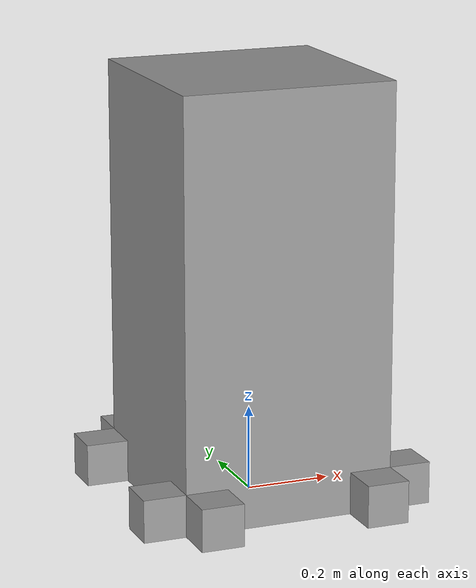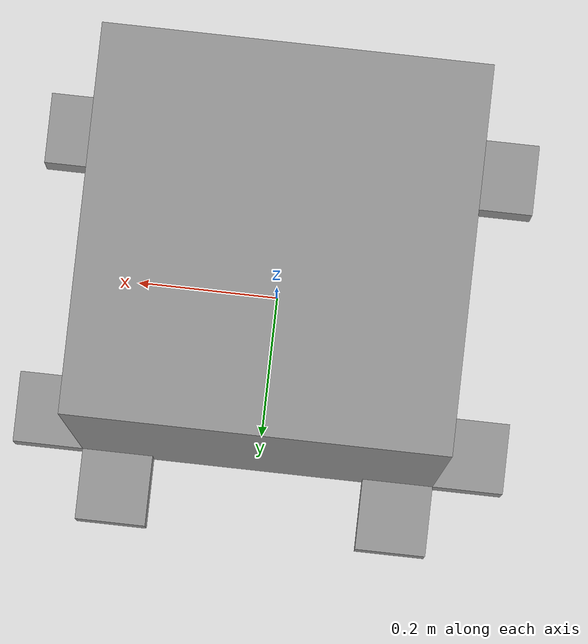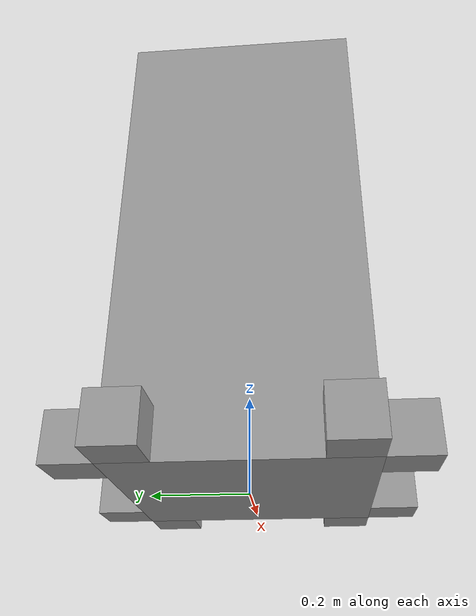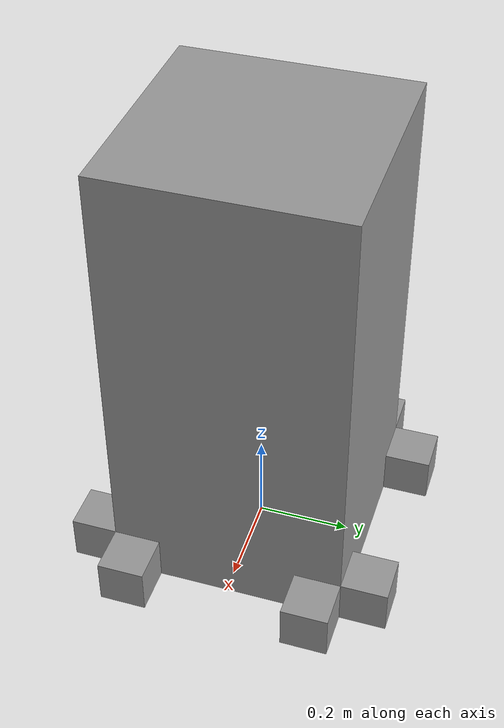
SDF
<?xml version='1.0'?>
<sdf version='1.6'>
  <model name='RSS_NO_BEARINGS'>
    <link name='link_0'>
      <inertial>
        <mass>1</mass>
        <inertia>
          <ixx>0.166667</ixx>
          <ixy>0</ixy>
          <ixz>0</ixz>
          <iyy>0.166667</iyy>
          <iyz>0</iyz>
          <izz>0.166667</izz>
        </inertia>
        <pose frame=''>0 0 0 0 -0 0</pose>
      </inertial>
      <pose frame=''>1e-06 -0 0.4 -0 -0 -0</pose>
      <gravity>1</gravity>
      <self_collide>1</self_collide>
      <kinematic>0</kinematic>
      <enable_wind>0</enable_wind>
      <visual name='visual'>
        <pose frame=''>0 0 0.1 0 -0 0</pose>
        <geometry>
          <box>
            <size>0.5 0.5 1</size>
          </box>
        </geometry>
        <material>
          <lighting>1</lighting>
          <script>
            <uri>file://media/materials/scripts/gazebo.material</uri>
            <name>Gazebo/Grey</name>
          </script>
          <shader type='pixel'>
            <normal_map>__default__</normal_map>
          </shader>
          <ambient>0.3 0.3 0.3 1</ambient>
          <diffuse>0.7 0.7 0.7 1</diffuse>
          <specular>0.01 0.01 0.01 1</specular>
          <emissive>0 0 0 1</emissive>
        </material>
        <transparency>0</transparency>
        <cast_shadows>1</cast_shadows>
      </visual>
      <collision name='collision'>
        <laser_retro>0</laser_retro>
        <max_contacts>10</max_contacts>
        <pose frame=''>0 0 0.1 0 -0 0</pose>
        <geometry>
          <box>
            <size>0.5 0.5 1</size>
          </box>
        </geometry>
        <surface>
          <friction>
            <ode>
              <mu>0</mu>
              <mu2>0</mu2>
              <fdir1>0 0 0</fdir1>
              <slip1>0</slip1>
              <slip2>0</slip2>
            </ode>
            <torsional>
              <coefficient>1</coefficient>
              <patch_radius>0</patch_radius>
              <surface_radius>0</surface_radius>
              <use_patch_radius>1</use_patch_radius>
              <ode>
                <slip>0</slip>
              </ode>
            </torsional>
          </friction>
          <bounce>
            <restitution_coefficient>0</restitution_coefficient>
            <threshold>1e+06</threshold>
          </bounce>
          <contact>
            <collide_without_contact>0</collide_without_contact>
            <collide_without_contact_bitmask>1</collide_without_contact_bitmask>
            <collide_bitmask>1</collide_bitmask>
            <ode>
              <soft_cfm>0</soft_cfm>
              <soft_erp>0.2</soft_erp>
              <kp>1e+13</kp>
              <kd>1</kd>
              <max_vel>0.01</max_vel>
              <min_depth>0</min_depth>
            </ode>
            <bullet>
              <split_impulse>1</split_impulse>
              <split_impulse_penetration_threshold>-0.01</split_impulse_penetration_threshold>
              <soft_cfm>0</soft_cfm>
              <soft_erp>0.2</soft_erp>
              <kp>1e+13</kp>
              <kd>1</kd>
            </bullet>
          </contact>
        </surface>
      </collision>
    </link>
    <link name='link_1'>
      <inertial>
        <mass>1</mass>
        <inertia>
          <ixx>0.166667</ixx>
          <ixy>0</ixy>
          <ixz>0</ixz>
          <iyy>0.166667</iyy>
          <iyz>0</iyz>
          <izz>0.166667</izz>
        </inertia>
        <pose frame=''>0 0 0 0 -0 0</pose>
      </inertial>
      <pose frame=''>-0.199999 0.299999 -0.05 -0 -0 -0</pose>
      <gravity>1</gravity>
      <self_collide>1</self_collide>
      <kinematic>0</kinematic>
      <enable_wind>0</enable_wind>
      <visual name='visual'>
        <pose frame=''>0 0 0.1 0 -0 0</pose>
        <geometry>
          <box>
            <size>0.1 0.1 0.1</size>
          </box>
        </geometry>
        <material>
          <lighting>1</lighting>
          <script>
            <uri>file://media/materials/scripts/gazebo.material</uri>
            <name>Gazebo/Grey</name>
          </script>
          <shader type='pixel'>
            <normal_map>__default__</normal_map>
          </shader>
          <ambient>0.3 0.3 0.3 1</ambient>
          <diffuse>0.7 0.7 0.7 1</diffuse>
          <specular>0.01 0.01 0.01 1</specular>
          <emissive>0 0 0 1</emissive>
        </material>
        <transparency>0</transparency>
        <cast_shadows>1</cast_shadows>
      </visual>
      <collision name='collision'>
        <laser_retro>0</laser_retro>
        <max_contacts>10</max_contacts>
        <pose frame=''>0 0 0.1 0 -0 0</pose>
        <geometry>
          <box>
            <size>0.1 0.1 0.1</size>
          </box>
        </geometry>
        <surface>
          <friction>
            <ode>
              <mu>0</mu>
              <mu2>1</mu2>
              <fdir1>0 0 0</fdir1>
              <slip1>0</slip1>
              <slip2>0</slip2>
            </ode>
            <torsional>
              <coefficient>1</coefficient>
              <patch_radius>0</patch_radius>
              <surface_radius>0</surface_radius>
              <use_patch_radius>1</use_patch_radius>
              <ode>
                <slip>0</slip>
              </ode>
            </torsional>
          </friction>
          <bounce>
            <restitution_coefficient>0</restitution_coefficient>
            <threshold>1e+06</threshold>
          </bounce>
          <contact>
            <collide_without_contact>0</collide_without_contact>
            <collide_without_contact_bitmask>1</collide_without_contact_bitmask>
            <collide_bitmask>1</collide_bitmask>
            <ode>
              <soft_cfm>0</soft_cfm>
              <soft_erp>0.2</soft_erp>
              <kp>1e+13</kp>
              <kd>1</kd>
              <max_vel>0.01</max_vel>
              <min_depth>0</min_depth>
            </ode>
            <bullet>
              <split_impulse>1</split_impulse>
              <split_impulse_penetration_threshold>-0.01</split_impulse_penetration_threshold>
              <soft_cfm>0</soft_cfm>
              <soft_erp>0.2</soft_erp>
              <kp>1e+13</kp>
              <kd>1</kd>
            </bullet>
          </contact>
        </surface>
      </collision>
    </link>
    <link name='link_1_clone'>
      <inertial>
        <mass>1</mass>
        <inertia>
          <ixx>0.166667</ixx>
          <ixy>0</ixy>
          <ixz>0</ixz>
          <iyy>0.166667</iyy>
          <iyz>0</iyz>
          <izz>0.166667</izz>
        </inertia>
        <pose frame=''>0 0 0 0 -0 0</pose>
      </inertial>
      <pose frame=''>0.199999 0.3 -0.05 -0 -0 -0</pose>
      <gravity>1</gravity>
      <self_collide>1</self_collide>
      <kinematic>0</kinematic>
      <enable_wind>0</enable_wind>
      <visual name='visual'>
        <pose frame=''>0 0 0.1 0 -0 0</pose>
        <geometry>
          <box>
            <size>0.1 0.1 0.1</size>
          </box>
        </geometry>
        <material>
          <lighting>1</lighting>
          <script>
            <uri>file://media/materials/scripts/gazebo.material</uri>
            <name>Gazebo/Grey</name>
          </script>
          <shader type='pixel'>
            <normal_map>__default__</normal_map>
          </shader>
          <ambient>0.3 0.3 0.3 1</ambient>
          <diffuse>0.7 0.7 0.7 1</diffuse>
          <specular>0.01 0.01 0.01 1</specular>
          <emissive>0 0 0 1</emissive>
        </material>
        <transparency>0</transparency>
        <cast_shadows>1</cast_shadows>
      </visual>
      <collision name='collision'>
        <laser_retro>0</laser_retro>
        <max_contacts>10</max_contacts>
        <pose frame=''>0 0 0.1 0 -0 0</pose>
        <geometry>
          <box>
            <size>0.1 0.1 0.1</size>
          </box>
        </geometry>
        <surface>
          <friction>
            <ode>
              <mu>0</mu>
              <mu2>0</mu2>
              <fdir1>0 0 0</fdir1>
              <slip1>0</slip1>
              <slip2>0</slip2>
            </ode>
            <torsional>
              <coefficient>1</coefficient>
              <patch_radius>0</patch_radius>
              <surface_radius>0</surface_radius>
              <use_patch_radius>1</use_patch_radius>
              <ode>
                <slip>0</slip>
              </ode>
            </torsional>
          </friction>
          <bounce>
            <restitution_coefficient>0</restitution_coefficient>
            <threshold>1e+06</threshold>
          </bounce>
          <contact>
            <collide_without_contact>0</collide_without_contact>
            <collide_without_contact_bitmask>1</collide_without_contact_bitmask>
            <collide_bitmask>1</collide_bitmask>
            <ode>
              <soft_cfm>0</soft_cfm>
              <soft_erp>0.2</soft_erp>
              <kp>1e+13</kp>
              <kd>1</kd>
              <max_vel>0.01</max_vel>
              <min_depth>0</min_depth>
            </ode>
            <bullet>
              <split_impulse>1</split_impulse>
              <split_impulse_penetration_threshold>-0.01</split_impulse_penetration_threshold>
              <soft_cfm>0</soft_cfm>
              <soft_erp>0.2</soft_erp>
              <kp>1e+13</kp>
              <kd>1</kd>
            </bullet>
          </contact>
        </surface>
      </collision>
    </link>
    <link name='link_1_clone_0'>
      <inertial>
        <mass>1</mass>
        <inertia>
          <ixx>0.166667</ixx>
          <ixy>0</ixy>
          <ixz>0</ixz>
          <iyy>0.166667</iyy>
          <iyz>0</iyz>
          <izz>0.166667</izz>
        </inertia>
        <pose frame=''>0 0 0 0 -0 0</pose>
      </inertial>
      <pose frame=''>-0.299999 0.2 -0.05 -0 -0 -0</pose>
      <gravity>1</gravity>
      <self_collide>1</self_collide>
      <kinematic>0</kinematic>
      <enable_wind>0</enable_wind>
      <visual name='visual'>
        <pose frame=''>0 0 0.1 0 -0 0</pose>
        <geometry>
          <box>
            <size>0.1 0.1 0.1</size>
          </box>
        </geometry>
        <material>
          <lighting>1</lighting>
          <script>
            <uri>file://media/materials/scripts/gazebo.material</uri>
            <name>Gazebo/Grey</name>
          </script>
          <shader type='pixel'>
            <normal_map>__default__</normal_map>
          </shader>
          <ambient>0.3 0.3 0.3 1</ambient>
          <diffuse>0.7 0.7 0.7 1</diffuse>
          <specular>0.01 0.01 0.01 1</specular>
          <emissive>0 0 0 1</emissive>
        </material>
        <transparency>0</transparency>
        <cast_shadows>1</cast_shadows>
      </visual>
      <collision name='collision'>
        <laser_retro>0</laser_retro>
        <max_contacts>10</max_contacts>
        <pose frame=''>0 0 0.1 0 -0 0</pose>
        <geometry>
          <box>
            <size>0.1 0.1 0.1</size>
          </box>
        </geometry>
        <surface>
          <friction>
            <ode>
              <mu>0</mu>
              <mu2>0</mu2>
              <fdir1>0 0 0</fdir1>
              <slip1>0</slip1>
              <slip2>0</slip2>
            </ode>
            <torsional>
              <coefficient>1</coefficient>
              <patch_radius>0</patch_radius>
              <surface_radius>0</surface_radius>
              <use_patch_radius>1</use_patch_radius>
              <ode>
                <slip>0</slip>
              </ode>
            </torsional>
          </friction>
          <bounce>
            <restitution_coefficient>0</restitution_coefficient>
            <threshold>1e+06</threshold>
          </bounce>
          <contact>
            <collide_without_contact>0</collide_without_contact>
            <collide_without_contact_bitmask>1</collide_without_contact_bitmask>
            <collide_bitmask>1</collide_bitmask>
            <ode>
              <soft_cfm>0</soft_cfm>
              <soft_erp>0.2</soft_erp>
              <kp>1e+13</kp>
              <kd>1</kd>
              <max_vel>0.01</max_vel>
              <min_depth>0</min_depth>
            </ode>
            <bullet>
              <split_impulse>1</split_impulse>
              <split_impulse_penetration_threshold>-0.01</split_impulse_penetration_threshold>
              <soft_cfm>0</soft_cfm>
              <soft_erp>0.2</soft_erp>
              <kp>1e+13</kp>
              <kd>1</kd>
            </bullet>
          </contact>
        </surface>
      </collision>
    </link>
    <link name='link_1_clone_1'>
      <inertial>
        <mass>1</mass>
        <inertia>
          <ixx>0.166667</ixx>
          <ixy>0</ixy>
          <ixz>0</ixz>
          <iyy>0.166667</iyy>
          <iyz>0</iyz>
          <izz>0.166667</izz>
        </inertia>
        <pose frame=''>0 0 0 0 -0 0</pose>
      </inertial>
      <pose frame=''>-0.299999 -0.2 -0.05 -0 -0 -0</pose>
      <gravity>1</gravity>
      <self_collide>1</self_collide>
      <kinematic>0</kinematic>
      <enable_wind>0</enable_wind>
      <visual name='visual'>
        <pose frame=''>0 0 0.1 0 -0 0</pose>
        <geometry>
          <box>
            <size>0.1 0.1 0.1</size>
          </box>
        </geometry>
        <material>
          <lighting>1</lighting>
          <script>
            <uri>file://media/materials/scripts/gazebo.material</uri>
            <name>Gazebo/Grey</name>
          </script>
          <shader type='pixel'>
            <normal_map>__default__</normal_map>
          </shader>
          <ambient>0.3 0.3 0.3 1</ambient>
          <diffuse>0.7 0.7 0.7 1</diffuse>
          <specular>0.01 0.01 0.01 1</specular>
          <emissive>0 0 0 1</emissive>
        </material>
        <transparency>0</transparency>
        <cast_shadows>1</cast_shadows>
      </visual>
      <collision name='collision'>
        <laser_retro>0</laser_retro>
        <max_contacts>10</max_contacts>
        <pose frame=''>0 0 0.1 0 -0 0</pose>
        <geometry>
          <box>
            <size>0.1 0.1 0.1</size>
          </box>
        </geometry>
        <surface>
          <friction>
            <ode>
              <mu>0</mu>
              <mu2>0</mu2>
              <fdir1>0 0 0</fdir1>
              <slip1>0</slip1>
              <slip2>0</slip2>
            </ode>
            <torsional>
              <coefficient>1</coefficient>
              <patch_radius>0</patch_radius>
              <surface_radius>0</surface_radius>
              <use_patch_radius>1</use_patch_radius>
              <ode>
                <slip>0</slip>
              </ode>
            </torsional>
          </friction>
          <bounce>
            <restitution_coefficient>0</restitution_coefficient>
            <threshold>1e+06</threshold>
          </bounce>
          <contact>
            <collide_without_contact>0</collide_without_contact>
            <collide_without_contact_bitmask>1</collide_without_contact_bitmask>
            <collide_bitmask>1</collide_bitmask>
            <ode>
              <soft_cfm>0</soft_cfm>
              <soft_erp>0.2</soft_erp>
              <kp>1e+13</kp>
              <kd>1</kd>
              <max_vel>0.01</max_vel>
              <min_depth>0</min_depth>
            </ode>
            <bullet>
              <split_impulse>1</split_impulse>
              <split_impulse_penetration_threshold>-0.01</split_impulse_penetration_threshold>
              <soft_cfm>0</soft_cfm>
              <soft_erp>0.2</soft_erp>
              <kp>1e+13</kp>
              <kd>1</kd>
            </bullet>
          </contact>
        </surface>
      </collision>
    </link>
    <link name='link_1_clone_2'>
      <inertial>
        <mass>1</mass>
        <inertia>
          <ixx>0.166667</ixx>
          <ixy>0</ixy>
          <ixz>0</ixz>
          <iyy>0.166667</iyy>
          <iyz>0</iyz>
          <izz>0.166667</izz>
        </inertia>
        <pose frame=''>0 0 0 0 -0 0</pose>
      </inertial>
      <pose frame=''>0.2 -0.3 -0.05 -0 -0 -0</pose>
      <gravity>1</gravity>
      <self_collide>1</self_collide>
      <kinematic>0</kinematic>
      <enable_wind>0</enable_wind>
      <visual name='visual'>
        <pose frame=''>0 0 0.1 0 -0 0</pose>
        <geometry>
          <box>
            <size>0.1 0.1 0.1</size>
          </box>
        </geometry>
        <material>
          <lighting>1</lighting>
          <script>
            <uri>file://media/materials/scripts/gazebo.material</uri>
            <name>Gazebo/Grey</name>
          </script>
          <shader type='pixel'>
            <normal_map>__default__</normal_map>
          </shader>
          <ambient>0.3 0.3 0.3 1</ambient>
          <diffuse>0.7 0.7 0.7 1</diffuse>
          <specular>0.01 0.01 0.01 1</specular>
          <emissive>0 0 0 1</emissive>
        </material>
        <transparency>0</transparency>
        <cast_shadows>1</cast_shadows>
      </visual>
      <collision name='collision'>
        <laser_retro>0</laser_retro>
        <max_contacts>10</max_contacts>
        <pose frame=''>0 0 0.1 0 -0 0</pose>
        <geometry>
          <box>
            <size>0.1 0.1 0.1</size>
          </box>
        </geometry>
        <surface>
          <friction>
            <ode>
              <mu>0</mu>
              <mu2>0</mu2>
              <fdir1>0 0 0</fdir1>
              <slip1>0</slip1>
              <slip2>0</slip2>
            </ode>
            <torsional>
              <coefficient>1</coefficient>
              <patch_radius>0</patch_radius>
              <surface_radius>0</surface_radius>
              <use_patch_radius>1</use_patch_radius>
              <ode>
                <slip>0</slip>
              </ode>
            </torsional>
          </friction>
          <bounce>
            <restitution_coefficient>0</restitution_coefficient>
            <threshold>1e+06</threshold>
          </bounce>
          <contact>
            <collide_without_contact>0</collide_without_contact>
            <collide_without_contact_bitmask>1</collide_without_contact_bitmask>
            <collide_bitmask>1</collide_bitmask>
            <ode>
              <soft_cfm>0</soft_cfm>
              <soft_erp>0.2</soft_erp>
              <kp>1e+13</kp>
              <kd>1</kd>
              <max_vel>0.01</max_vel>
              <min_depth>0</min_depth>
            </ode>
            <bullet>
              <split_impulse>1</split_impulse>
              <split_impulse_penetration_threshold>-0.01</split_impulse_penetration_threshold>
              <soft_cfm>0</soft_cfm>
              <soft_erp>0.2</soft_erp>
              <kp>1e+13</kp>
              <kd>1</kd>
            </bullet>
          </contact>
        </surface>
      </collision>
    </link>
    <link name='link_1_clone_3'>
      <inertial>
        <mass>1</mass>
        <inertia>
          <ixx>0.166667</ixx>
          <ixy>0</ixy>
          <ixz>0</ixz>
          <iyy>0.166667</iyy>
          <iyz>0</iyz>
          <izz>0.166667</izz>
        </inertia>
        <pose frame=''>0 0 0 0 -0 0</pose>
      </inertial>
      <pose frame=''>-0.2 -0.3 -0.05 -0 -0 -0</pose>
      <gravity>1</gravity>
      <self_collide>1</self_collide>
      <kinematic>0</kinematic>
      <enable_wind>0</enable_wind>
      <visual name='visual'>
        <pose frame=''>0 0 0.1 0 -0 0</pose>
        <geometry>
          <box>
            <size>0.1 0.1 0.1</size>
          </box>
        </geometry>
        <material>
          <lighting>1</lighting>
          <script>
            <uri>file://media/materials/scripts/gazebo.material</uri>
            <name>Gazebo/Grey</name>
          </script>
          <shader type='pixel'>
            <normal_map>__default__</normal_map>
          </shader>
          <ambient>0.3 0.3 0.3 1</ambient>
          <diffuse>0.7 0.7 0.7 1</diffuse>
          <specular>0.01 0.01 0.01 1</specular>
          <emissive>0 0 0 1</emissive>
        </material>
        <transparency>0</transparency>
        <cast_shadows>1</cast_shadows>
      </visual>
      <collision name='collision'>
        <laser_retro>0</laser_retro>
        <max_contacts>10</max_contacts>
        <pose frame=''>0 0 0.1 0 -0 0</pose>
        <geometry>
          <box>
            <size>0.1 0.1 0.1</size>
          </box>
        </geometry>
        <surface>
          <friction>
            <ode>
              <mu>0</mu>
              <mu2>0</mu2>
              <fdir1>0 0 0</fdir1>
              <slip1>0</slip1>
              <slip2>0</slip2>
            </ode>
            <torsional>
              <coefficient>1</coefficient>
              <patch_radius>0</patch_radius>
              <surface_radius>0</surface_radius>
              <use_patch_radius>1</use_patch_radius>
              <ode>
                <slip>0</slip>
              </ode>
            </torsional>
          </friction>
          <bounce>
            <restitution_coefficient>0</restitution_coefficient>
            <threshold>1e+06</threshold>
          </bounce>
          <contact>
            <collide_without_contact>0</collide_without_contact>
            <collide_without_contact_bitmask>1</collide_without_contact_bitmask>
            <collide_bitmask>1</collide_bitmask>
            <ode>
              <soft_cfm>0</soft_cfm>
              <soft_erp>0.2</soft_erp>
              <kp>1e+13</kp>
              <kd>1</kd>
              <max_vel>0.01</max_vel>
              <min_depth>0</min_depth>
            </ode>
            <bullet>
              <split_impulse>1</split_impulse>
              <split_impulse_penetration_threshold>-0.01</split_impulse_penetration_threshold>
              <soft_cfm>0</soft_cfm>
              <soft_erp>0.2</soft_erp>
              <kp>1e+13</kp>
              <kd>1</kd>
            </bullet>
          </contact>
        </surface>
      </collision>
    </link>
    <link name='link_1_clone_4'>
      <inertial>
        <mass>1</mass>
        <inertia>
          <ixx>0.166667</ixx>
          <ixy>0</ixy>
          <ixz>0</ixz>
          <iyy>0.166667</iyy>
          <iyz>0</iyz>
          <izz>0.166667</izz>
        </inertia>
        <pose frame=''>0 0 0 0 -0 0</pose>
      </inertial>
      <pose frame=''>0.3 -0.200001 -0.05 -0 -0 -0</pose>
      <gravity>1</gravity>
      <self_collide>1</self_collide>
      <kinematic>0</kinematic>
      <enable_wind>0</enable_wind>
      <visual name='visual'>
        <pose frame=''>0 0 0.1 0 -0 0</pose>
        <geometry>
          <box>
            <size>0.1 0.1 0.1</size>
          </box>
        </geometry>
        <material>
          <lighting>1</lighting>
          <script>
            <uri>file://media/materials/scripts/gazebo.material</uri>
            <name>Gazebo/Grey</name>
          </script>
          <shader type='pixel'>
            <normal_map>__default__</normal_map>
          </shader>
          <ambient>0.3 0.3 0.3 1</ambient>
          <diffuse>0.7 0.7 0.7 1</diffuse>
          <specular>0.01 0.01 0.01 1</specular>
          <emissive>0 0 0 1</emissive>
        </material>
        <transparency>0</transparency>
        <cast_shadows>1</cast_shadows>
      </visual>
      <collision name='collision'>
        <laser_retro>0</laser_retro>
        <max_contacts>10</max_contacts>
        <pose frame=''>0 0 0.1 0 -0 0</pose>
        <geometry>
          <box>
            <size>0.1 0.1 0.1</size>
          </box>
        </geometry>
        <surface>
          <friction>
            <ode>
              <mu>0</mu>
              <mu2>0</mu2>
              <fdir1>0 0 0</fdir1>
              <slip1>0</slip1>
              <slip2>0</slip2>
            </ode>
            <torsional>
              <coefficient>1</coefficient>
              <patch_radius>0</patch_radius>
              <surface_radius>0</surface_radius>
              <use_patch_radius>1</use_patch_radius>
              <ode>
                <slip>0</slip>
              </ode>
            </torsional>
          </friction>
          <bounce>
            <restitution_coefficient>0</restitution_coefficient>
            <threshold>1e+06</threshold>
          </bounce>
          <contact>
            <collide_without_contact>0</collide_without_contact>
            <collide_without_contact_bitmask>1</collide_without_contact_bitmask>
            <collide_bitmask>1</collide_bitmask>
            <ode>
              <soft_cfm>0</soft_cfm>
              <soft_erp>0.2</soft_erp>
              <kp>1e+13</kp>
              <kd>1</kd>
              <max_vel>0.01</max_vel>
              <min_depth>0</min_depth>
            </ode>
            <bullet>
              <split_impulse>1</split_impulse>
              <split_impulse_penetration_threshold>-0.01</split_impulse_penetration_threshold>
              <soft_cfm>0</soft_cfm>
              <soft_erp>0.2</soft_erp>
              <kp>1e+13</kp>
              <kd>1</kd>
            </bullet>
          </contact>
        </surface>
      </collision>
    </link>
    <link name='link_1_clone_5'>
      <inertial>
        <mass>1</mass>
        <inertia>
          <ixx>0.166667</ixx>
          <ixy>0</ixy>
          <ixz>0</ixz>
          <iyy>0.166667</iyy>
          <iyz>0</iyz>
          <izz>0.166667</izz>
        </inertia>
        <pose frame=''>0 0 0 0 -0 0</pose>
      </inertial>
      <pose frame=''>0.3 0.199999 -0.05 -0 -0 -0</pose>
      <gravity>1</gravity>
      <self_collide>1</self_collide>
      <kinematic>0</kinematic>
      <enable_wind>0</enable_wind>
      <visual name='visual'>
        <pose frame=''>0 0 0.1 0 -0 0</pose>
        <geometry>
          <box>
            <size>0.1 0.1 0.1</size>
          </box>
        </geometry>
        <material>
          <lighting>1</lighting>
          <script>
            <uri>file://media/materials/scripts/gazebo.material</uri>
            <name>Gazebo/Grey</name>
          </script>
          <shader type='pixel'>
            <normal_map>__default__</normal_map>
          </shader>
          <ambient>0.3 0.3 0.3 1</ambient>
          <diffuse>0.7 0.7 0.7 1</diffuse>
          <specular>0.01 0.01 0.01 1</specular>
          <emissive>0 0 0 1</emissive>
        </material>
        <transparency>0</transparency>
        <cast_shadows>1</cast_shadows>
      </visual>
      <collision name='collision'>
        <laser_retro>0</laser_retro>
        <max_contacts>10</max_contacts>
        <pose frame=''>0 0 0.1 0 -0 0</pose>
        <geometry>
          <box>
            <size>0.1 0.1 0.1</size>
          </box>
        </geometry>
        <surface>
          <friction>
            <ode>
              <mu>0</mu>
              <mu2>0</mu2>
              <fdir1>0 0 0</fdir1>
              <slip1>0</slip1>
              <slip2>0</slip2>
            </ode>
            <torsional>
              <coefficient>1</coefficient>
              <patch_radius>0</patch_radius>
              <surface_radius>0</surface_radius>
              <use_patch_radius>1</use_patch_radius>
              <ode>
                <slip>0</slip>
              </ode>
            </torsional>
          </friction>
          <bounce>
            <restitution_coefficient>0</restitution_coefficient>
            <threshold>1e+06</threshold>
          </bounce>
          <contact>
            <collide_without_contact>0</collide_without_contact>
            <collide_without_contact_bitmask>1</collide_without_contact_bitmask>
            <collide_bitmask>1</collide_bitmask>
            <ode>
              <soft_cfm>0</soft_cfm>
              <soft_erp>0.2</soft_erp>
              <kp>1e+13</kp>
              <kd>1</kd>
              <max_vel>0.01</max_vel>
              <min_depth>0</min_depth>
            </ode>
            <bullet>
              <split_impulse>1</split_impulse>
              <split_impulse_penetration_threshold>-0.01</split_impulse_penetration_threshold>
              <soft_cfm>0</soft_cfm>
              <soft_erp>0.2</soft_erp>
              <kp>1e+13</kp>
              <kd>1</kd>
            </bullet>
          </contact>
        </surface>
      </collision>
    </link>
    <joint name='link_0_JOINT_0' type='fixed'>
      <parent>link_0</parent>
      <child>link_1</child>
      <pose frame=''>0 0 0 0 -0 0</pose>
      <physics>
        <ode>
          <limit>
            <cfm>0</cfm>
            <erp>0.2</erp>
          </limit>
          <suspension>
            <cfm>0</cfm>
            <erp>0.2</erp>
          </suspension>
        </ode>
      </physics>
    </joint>
    <joint name='link_0_JOINT_1' type='fixed'>
      <parent>link_0</parent>
      <child>link_1_clone</child>
      <pose frame=''>0 0 0 0 -0 0</pose>
      <physics>
        <ode>
          <limit>
            <cfm>0</cfm>
            <erp>0.2</erp>
          </limit>
          <suspension>
            <cfm>0</cfm>
            <erp>0.2</erp>
          </suspension>
        </ode>
      </physics>
    </joint>
    <joint name='link_0_JOINT_2' type='fixed'>
      <parent>link_0</parent>
      <child>link_1_clone_0</child>
      <pose frame=''>0 0 0 0 -0 0</pose>
      <physics>
        <ode>
          <limit>
            <cfm>0</cfm>
            <erp>0.2</erp>
          </limit>
          <suspension>
            <cfm>0</cfm>
            <erp>0.2</erp>
          </suspension>
        </ode>
      </physics>
    </joint>
    <joint name='link_0_JOINT_3' type='fixed'>
      <parent>link_0</parent>
      <child>link_1_clone_1</child>
      <pose frame=''>0 0 0 0 -0 0</pose>
      <physics>
        <ode>
          <limit>
            <cfm>0</cfm>
            <erp>0.2</erp>
          </limit>
          <suspension>
            <cfm>0</cfm>
            <erp>0.2</erp>
          </suspension>
        </ode>
      </physics>
    </joint>
    <joint name='link_0_JOINT_4' type='fixed'>
      <parent>link_0</parent>
      <child>link_1_clone_2</child>
      <pose frame=''>0 0 0 0 -0 0</pose>
      <physics>
        <ode>
          <limit>
            <cfm>0</cfm>
            <erp>0.2</erp>
          </limit>
          <suspension>
            <cfm>0</cfm>
            <erp>0.2</erp>
          </suspension>
        </ode>
      </physics>
    </joint>
    <joint name='link_0_JOINT_5' type='fixed'>
      <parent>link_0</parent>
      <child>link_1_clone_3</child>
      <pose frame=''>0 0 0 0 -0 0</pose>
      <physics>
        <ode>
          <limit>
            <cfm>0</cfm>
            <erp>0.2</erp>
          </limit>
          <suspension>
            <cfm>0</cfm>
            <erp>0.2</erp>
          </suspension>
        </ode>
      </physics>
    </joint>
    <joint name='link_0_JOINT_6' type='fixed'>
      <parent>link_0</parent>
      <child>link_1_clone_4</child>
      <pose frame=''>0 0 0 0 -0 0</pose>
      <physics>
        <ode>
          <limit>
            <cfm>0</cfm>
            <erp>0.2</erp>
          </limit>
          <suspension>
            <cfm>0</cfm>
            <erp>0.2</erp>
          </suspension>
        </ode>
      </physics>
    </joint>
    <joint name='link_0_JOINT_7' type='fixed'>
      <parent>link_0</parent>
      <child>link_1_clone_5</child>
      <pose frame=''>0 0 0 0 -0 0</pose>
      <physics>
        <ode>
          <limit>
            <cfm>0</cfm>
            <erp>0.2</erp>
          </limit>
          <suspension>
            <cfm>0</cfm>
            <erp>0.2</erp>
          </suspension>
        </ode>
      </physics>
    </joint>
    <static>0</static>
    <allow_auto_disable>1</allow_auto_disable>
    <plugin name='imu_plugin' filename='libimu_plugin.so'/>
    <plugin name='model_push' filename='libmodel_push.so'/>
  </model>
</sdf>
